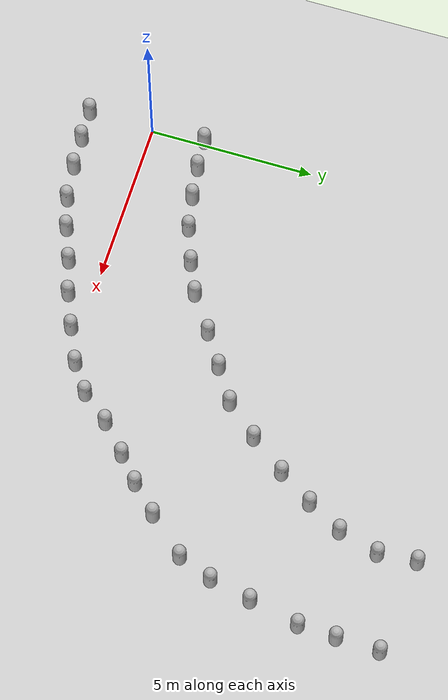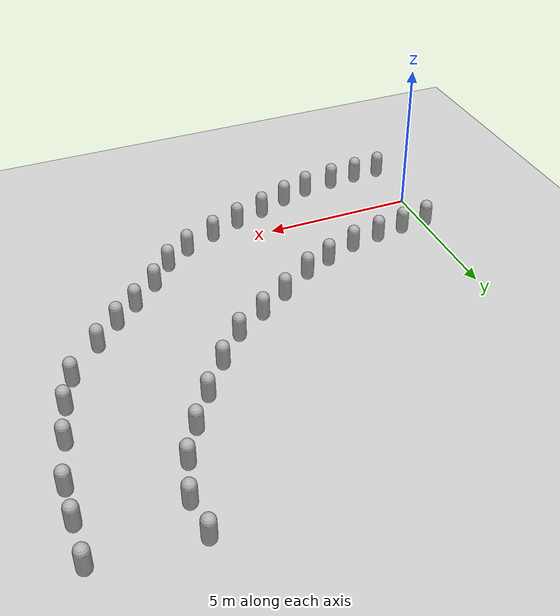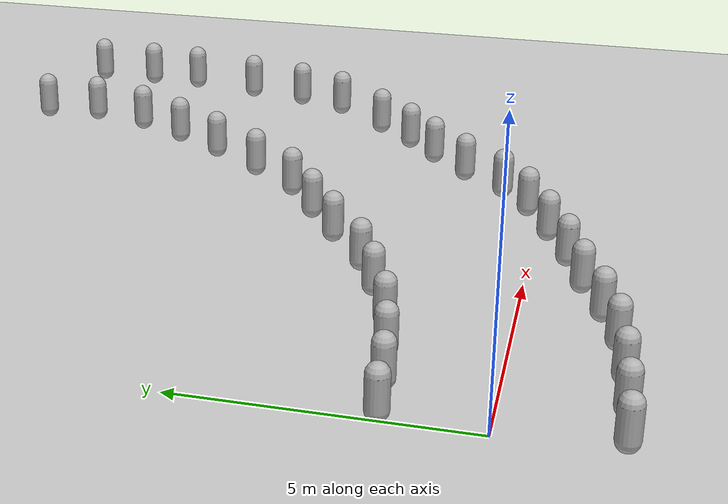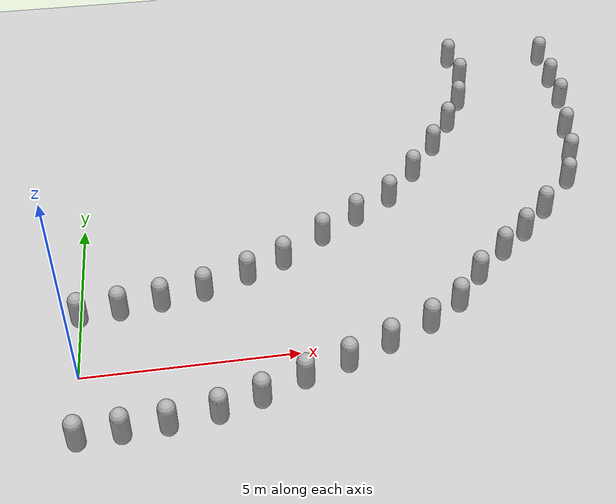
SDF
<sdf version="1.10">
 <world name="empty">
  <model name="ground_plane">
   <static>true</static>
   <link name="link">
    <collision name="collision">
     <geometry><plane><normal>0 0 1</normal><size>100 100</size></plane></geometry>
    </collision>
    <visual name="visual">
     <geometry><plane><normal>0 0 1</normal><size>100 100</size></plane></geometry>
     <material>
      <ambient>0.800000012 0.800000012 0.800000012 1</ambient>
      <diffuse>0.800000012 0.800000012 0.800000012 1</diffuse>
      <specular>0.800000012 0.800000012 0.800000012 1</specular>
     </material>
    </visual>
    <inertial>
     <mass>1</mass>
     <inertia><ixx>1</ixx><ixy>0</ixy><ixz>0</ixz><iyy>1</iyy><iyz>0</iyz><izz>1</izz></inertia>
    </inertial>
   </link>
  </model>
  <model name="capsule">
   <pose>0.0079092960798012868 1.6543923129827109 0.499999999902001 0 0 0</pose>
   <link name="capsule_link">
    <inertial>
     <inertia>
      <ixx>0.074153999999999998</ixx>
      <ixy>0</ixy>
      <ixz>0</ixz>
      <iyy>0.074153999999999998</iyy>
      <iyz>0</iyz>
      <izz>0.018769000000000001</izz>
     </inertia>
     <mass>1</mass>
    </inertial>
    <collision name="capsule_collision">
     <geometry>
      <capsule><radius>0.20000000000000001</radius><length>0.59999999999999998</length></capsule>
     </geometry>
    </collision>
    <visual name="capsule_visual">
     <geometry>
      <capsule><radius>0.20000000000000001</radius><length>0.59999999999999998</length></capsule>
     </geometry>
     <material>
      <ambient>0.300000012 0.300000012 0.300000012 1</ambient>
      <diffuse>0.699999988 0.699999988 0.699999988 1</diffuse>
      <specular>1 1 1 1</specular>
     </material>
    </visual>
   </link>
   <static>false</static>
  </model>
  <model name="capsule_0">
   <pose>0.94512511227716023 1.733680784439902 0.499999999902001 0 0 0</pose>
   <link name="capsule_link">
    <inertial>
     <inertia>
      <ixx>0.074153999999999998</ixx>
      <ixy>0</ixy>
      <ixz>0</ixz>
      <iyy>0.074153999999999998</iyy>
      <iyz>0</iyz>
      <izz>0.018769000000000001</izz>
     </inertia>
     <mass>1</mass>
    </inertial>
    <collision name="capsule_collision">
     <geometry>
      <capsule><radius>0.20000000000000001</radius><length>0.59999999999999998</length></capsule>
     </geometry>
    </collision>
    <visual name="capsule_visual">
     <geometry>
      <capsule><radius>0.20000000000000001</radius><length>0.59999999999999998</length></capsule>
     </geometry>
     <material>
      <ambient>0.300000012 0.300000012 0.300000012 1</ambient>
      <diffuse>0.699999988 0.699999988 0.699999988 1</diffuse>
      <specular>1 1 1 1</specular>
     </material>
    </visual>
   </link>
   <static>false</static>
  </model>
  <model name="capsule_1">
   <pose>1.9187066357914726 1.8748929251924817 0.499999999902001 0 0 0</pose>
   <link name="capsule_link">
    <inertial>
     <inertia>
      <ixx>0.074153999999999998</ixx>
      <ixy>0</ixy>
      <ixz>0</ixz>
      <iyy>0.074153999999999998</iyy>
      <iyz>0</iyz>
      <izz>0.018769000000000001</izz>
     </inertia>
     <mass>1</mass>
    </inertial>
    <collision name="capsule_collision">
     <geometry>
      <capsule><radius>0.20000000000000001</radius><length>0.59999999999999998</length></capsule>
     </geometry>
    </collision>
    <visual name="capsule_visual">
     <geometry>
      <capsule><radius>0.20000000000000001</radius><length>0.59999999999999998</length></capsule>
     </geometry>
     <material>
      <ambient>0.300000012 0.300000012 0.300000012 1</ambient>
      <diffuse>0.699999988 0.699999988 0.699999988 1</diffuse>
      <specular>1 1 1 1</specular>
     </material>
    </visual>
   </link>
   <static>false</static>
  </model>
  <model name="capsule_2">
   <pose>0.071174021114242758 -1.9452252499138223 0.499999999902001 0 0 0</pose>
   <link name="capsule_link">
    <inertial>
     <inertia>
      <ixx>0.074153999999999998</ixx>
      <ixy>0</ixy>
      <ixz>0</ixz>
      <iyy>0.074153999999999998</iyy>
      <iyz>0</iyz>
      <izz>0.018769000000000001</izz>
     </inertia>
     <mass>1</mass>
    </inertial>
    <collision name="capsule_collision">
     <geometry>
      <capsule><radius>0.20000000000000001</radius><length>0.59999999999999998</length></capsule>
     </geometry>
    </collision>
    <visual name="capsule_visual">
     <geometry>
      <capsule><radius>0.20000000000000001</radius><length>0.59999999999999998</length></capsule>
     </geometry>
     <material>
      <ambient>0.300000012 0.300000012 0.300000012 1</ambient>
      <diffuse>0.699999988 0.699999988 0.699999988 1</diffuse>
      <specular>1 1 1 1</specular>
     </material>
    </visual>
   </link>
   <static>false</static>
  </model>
  <model name="capsule_3">
   <pose>1.0079840875515076 -1.8969727998720727 0.499999999902001 0 0 0</pose>
   <link name="capsule_link">
    <inertial>
     <inertia>
      <ixx>0.074153999999999998</ixx>
      <ixy>0</ixy>
      <ixz>0</ixz>
      <iyy>0.074153999999999998</iyy>
      <iyz>0</iyz>
      <izz>0.018769000000000001</izz>
     </inertia>
     <mass>1</mass>
    </inertial>
    <collision name="capsule_collision">
     <geometry>
      <capsule><radius>0.20000000000000001</radius><length>0.59999999999999998</length></capsule>
     </geometry>
    </collision>
    <visual name="capsule_visual">
     <geometry>
      <capsule><radius>0.20000000000000001</radius><length>0.59999999999999998</length></capsule>
     </geometry>
     <material>
      <ambient>0.300000012 0.300000012 0.300000012 1</ambient>
      <diffuse>0.699999988 0.699999988 0.699999988 1</diffuse>
      <specular>1 1 1 1</specular>
     </material>
    </visual>
   </link>
   <static>false</static>
  </model>
  <model name="capsule_4">
   <pose>1.9770966511890031 -1.8243848592570489 0.499999999902001 0 0 0</pose>
   <link name="capsule_link">
    <inertial>
     <inertia>
      <ixx>0.074153999999999998</ixx>
      <ixy>0</ixy>
      <ixz>0</ixz>
      <iyy>0.074153999999999998</iyy>
      <iyz>0</iyz>
      <izz>0.018769000000000001</izz>
     </inertia>
     <mass>1</mass>
    </inertial>
    <collision name="capsule_collision">
     <geometry>
      <capsule><radius>0.20000000000000001</radius><length>0.59999999999999998</length></capsule>
     </geometry>
    </collision>
    <visual name="capsule_visual">
     <geometry>
      <capsule><radius>0.20000000000000001</radius><length>0.59999999999999998</length></capsule>
     </geometry>
     <material>
      <ambient>0.300000012 0.300000012 0.300000012 1</ambient>
      <diffuse>0.699999988 0.699999988 0.699999988 1</diffuse>
      <specular>1 1 1 1</specular>
     </material>
    </visual>
   </link>
   <static>false</static>
  </model>
  <model name="capsule_5">
   <pose>2.9418799014673973 2.0835173150101385 0.499999999902001 0 0 0</pose>
   <link name="capsule_link">
    <inertial>
     <inertia>
      <ixx>0.074153999999999998</ixx>
      <ixy>0</ixy>
      <ixz>0</ixz>
      <iyy>0.074153999999999998</iyy>
      <iyz>0</iyz>
      <izz>0.018769000000000001</izz>
     </inertia>
     <mass>1</mass>
    </inertial>
    <collision name="capsule_collision">
     <geometry>
      <capsule><radius>0.20000000000000001</radius><length>0.59999999999999998</length></capsule>
     </geometry>
    </collision>
    <visual name="capsule_visual">
     <geometry>
      <capsule><radius>0.20000000000000001</radius><length>0.59999999999999998</length></capsule>
     </geometry>
     <material>
      <ambient>0.300000012 0.300000012 0.300000012 1</ambient>
      <diffuse>0.699999988 0.699999988 0.699999988 1</diffuse>
      <specular>1 1 1 1</specular>
     </material>
    </visual>
   </link>
   <static>false</static>
  </model>
  <model name="capsule_6">
   <pose>3.0534784039541742 -1.6741857712264725 0.499999999902001 0 0 0</pose>
   <link name="capsule_link">
    <inertial>
     <inertia>
      <ixx>0.074153999999999998</ixx>
      <ixy>0</ixy>
      <ixz>0</ixz>
      <iyy>0.074153999999999998</iyy>
      <iyz>0</iyz>
      <izz>0.018769000000000001</izz>
     </inertia>
     <mass>1</mass>
    </inertial>
    <collision name="capsule_collision">
     <geometry>
      <capsule><radius>0.20000000000000001</radius><length>0.59999999999999998</length></capsule>
     </geometry>
    </collision>
    <visual name="capsule_visual">
     <geometry>
      <capsule><radius>0.20000000000000001</radius><length>0.59999999999999998</length></capsule>
     </geometry>
     <material>
      <ambient>0.300000012 0.300000012 0.300000012 1</ambient>
      <diffuse>0.699999988 0.699999988 0.699999988 1</diffuse>
      <specular>1 1 1 1</specular>
     </material>
    </visual>
   </link>
   <static>false</static>
  </model>
  <model name="capsule_7">
   <pose>4.0094379070136714 2.4839232532498823 0.499999999902001 0 0 0</pose>
   <link name="capsule_link">
    <inertial>
     <inertia>
      <ixx>0.074153999999999998</ixx>
      <ixy>0</ixy>
      <ixz>0</ixz>
      <iyy>0.074153999999999998</iyy>
      <iyz>0</iyz>
      <izz>0.018769000000000001</izz>
     </inertia>
     <mass>1</mass>
    </inertial>
    <collision name="capsule_collision">
     <geometry>
      <capsule><radius>0.20000000000000001</radius><length>0.59999999999999998</length></capsule>
     </geometry>
    </collision>
    <visual name="capsule_visual">
     <geometry>
      <capsule><radius>0.20000000000000001</radius><length>0.59999999999999998</length></capsule>
     </geometry>
     <material>
      <ambient>0.300000012 0.300000012 0.300000012 1</ambient>
      <diffuse>0.699999988 0.699999988 0.699999988 1</diffuse>
      <specular>1 1 1 1</specular>
     </material>
    </visual>
   </link>
   <static>false</static>
  </model>
  <model name="capsule_8">
   <pose>3.9933107917520312 -1.3831246201174401 0.499999999902001 0 0 0</pose>
   <link name="capsule_link">
    <inertial>
     <inertia>
      <ixx>0.074153999999999998</ixx>
      <ixy>0</ixy>
      <ixz>0</ixz>
      <iyy>0.074153999999999998</iyy>
      <iyz>0</iyz>
      <izz>0.018769000000000001</izz>
     </inertia>
     <mass>1</mass>
    </inertial>
    <collision name="capsule_collision">
     <geometry>
      <capsule><radius>0.20000000000000001</radius><length>0.59999999999999998</length></capsule>
     </geometry>
    </collision>
    <visual name="capsule_visual">
     <geometry>
      <capsule><radius>0.20000000000000001</radius><length>0.59999999999999998</length></capsule>
     </geometry>
     <material>
      <ambient>0.300000012 0.300000012 0.300000012 1</ambient>
      <diffuse>0.699999988 0.699999988 0.699999988 1</diffuse>
      <specular>1 1 1 1</specular>
     </material>
    </visual>
   </link>
   <static>false</static>
  </model>
  <model name="capsule_9">
   <pose>4.9272845839928587 2.8907733621151106 0.499999999902001 0 0 0</pose>
   <link name="capsule_link">
    <inertial>
     <inertia>
      <ixx>0.074153999999999998</ixx>
      <ixy>0</ixy>
      <ixz>0</ixz>
      <iyy>0.074153999999999998</iyy>
      <iyz>0</iyz>
      <izz>0.018769000000000001</izz>
     </inertia>
     <mass>1</mass>
    </inertial>
    <collision name="capsule_collision">
     <geometry>
      <capsule><radius>0.20000000000000001</radius><length>0.59999999999999998</length></capsule>
     </geometry>
    </collision>
    <visual name="capsule_visual">
     <geometry>
      <capsule><radius>0.20000000000000001</radius><length>0.59999999999999998</length></capsule>
     </geometry>
     <material>
      <ambient>0.300000012 0.300000012 0.300000012 1</ambient>
      <diffuse>0.699999988 0.699999988 0.699999988 1</diffuse>
      <specular>1 1 1 1</specular>
     </material>
    </visual>
   </link>
   <static>false</static>
  </model>
  <model name="capsule_10">
   <pose>4.9840762807257226 -0.98658179176943239 0.499999999902001 0 0 0</pose>
   <link name="capsule_link">
    <inertial>
     <inertia>
      <ixx>0.074153999999999998</ixx>
      <ixy>0</ixy>
      <ixz>0</ixz>
      <iyy>0.074153999999999998</iyy>
      <iyz>0</iyz>
      <izz>0.018769000000000001</izz>
     </inertia>
     <mass>1</mass>
    </inertial>
    <collision name="capsule_collision">
     <geometry>
      <capsule><radius>0.20000000000000001</radius><length>0.59999999999999998</length></capsule>
     </geometry>
    </collision>
    <visual name="capsule_visual">
     <geometry>
      <capsule><radius>0.20000000000000001</radius><length>0.59999999999999998</length></capsule>
     </geometry>
     <material>
      <ambient>0.300000012 0.300000012 0.300000012 1</ambient>
      <diffuse>0.699999988 0.699999988 0.699999988 1</diffuse>
      <specular>1 1 1 1</specular>
     </material>
    </visual>
   </link>
   <static>false</static>
  </model>
  <model name="capsule_11">
   <pose>5.9982967455937626 3.6300361546412354 0.499999999902001 0 0 0</pose>
   <link name="capsule_link">
    <inertial>
     <inertia>
      <ixx>0.074153999999999998</ixx>
      <ixy>0</ixy>
      <ixz>0</ixz>
      <iyy>0.074153999999999998</iyy>
      <iyz>0</iyz>
      <izz>0.018769000000000001</izz>
     </inertia>
     <mass>1</mass>
    </inertial>
    <collision name="capsule_collision">
     <geometry>
      <capsule><radius>0.20000000000000001</radius><length>0.59999999999999998</length></capsule>
     </geometry>
    </collision>
    <visual name="capsule_visual">
     <geometry>
      <capsule><radius>0.20000000000000001</radius><length>0.59999999999999998</length></capsule>
     </geometry>
     <material>
      <ambient>0.300000012 0.300000012 0.300000012 1</ambient>
      <diffuse>0.699999988 0.699999988 0.699999988 1</diffuse>
      <specular>1 1 1 1</specular>
     </material>
    </visual>
   </link>
   <static>false</static>
  </model>
  <model name="capsule_12">
   <pose>5.9997241077704127 -0.66053042265015316 0.499999999902001 0 0 0</pose>
   <link name="capsule_link">
    <inertial>
     <inertia>
      <ixx>0.074153999999999998</ixx>
      <ixy>0</ixy>
      <ixz>0</ixz>
      <iyy>0.074153999999999998</iyy>
      <iyz>0</iyz>
      <izz>0.018769000000000001</izz>
     </inertia>
     <mass>1</mass>
    </inertial>
    <collision name="capsule_collision">
     <geometry>
      <capsule><radius>0.20000000000000001</radius><length>0.59999999999999998</length></capsule>
     </geometry>
    </collision>
    <visual name="capsule_visual">
     <geometry>
      <capsule><radius>0.20000000000000001</radius><length>0.59999999999999998</length></capsule>
     </geometry>
     <material>
      <ambient>0.300000012 0.300000012 0.300000012 1</ambient>
      <diffuse>0.699999988 0.699999988 0.699999988 1</diffuse>
      <specular>1 1 1 1</specular>
     </material>
    </visual>
   </link>
   <static>false</static>
  </model>
  <model name="capsule_13">
   <pose>6.9596569506124863 4.2527939600757358 0.499999999902001 0 0 0</pose>
   <link name="capsule_link">
    <inertial>
     <inertia>
      <ixx>0.074153999999999998</ixx>
      <ixy>0</ixy>
      <ixz>0</ixz>
      <iyy>0.074153999999999998</iyy>
      <iyz>0</iyz>
      <izz>0.018769000000000001</izz>
     </inertia>
     <mass>1</mass>
    </inertial>
    <collision name="capsule_collision">
     <geometry>
      <capsule><radius>0.20000000000000001</radius><length>0.59999999999999998</length></capsule>
     </geometry>
    </collision>
    <visual name="capsule_visual">
     <geometry>
      <capsule><radius>0.20000000000000001</radius><length>0.59999999999999998</length></capsule>
     </geometry>
     <material>
      <ambient>0.300000012 0.300000012 0.300000012 1</ambient>
      <diffuse>0.699999988 0.699999988 0.699999988 1</diffuse>
      <specular>1 1 1 1</specular>
     </material>
    </visual>
   </link>
   <static>false</static>
  </model>
  <model name="capsule_14">
   <pose>7.0108881171063908 -0.23596897892512203 0.499999999902001 0 0 0</pose>
   <link name="capsule_link">
    <inertial>
     <inertia>
      <ixx>0.074153999999999998</ixx>
      <ixy>0</ixy>
      <ixz>0</ixz>
      <iyy>0.074153999999999998</iyy>
      <iyz>0</iyz>
      <izz>0.018769000000000001</izz>
     </inertia>
     <mass>1</mass>
    </inertial>
    <collision name="capsule_collision">
     <geometry>
      <capsule><radius>0.20000000000000001</radius><length>0.59999999999999998</length></capsule>
     </geometry>
    </collision>
    <visual name="capsule_visual">
     <geometry>
      <capsule><radius>0.20000000000000001</radius><length>0.59999999999999998</length></capsule>
     </geometry>
     <material>
      <ambient>0.300000012 0.300000012 0.300000012 1</ambient>
      <diffuse>0.699999988 0.699999988 0.699999988 1</diffuse>
      <specular>1 1 1 1</specular>
     </material>
    </visual>
   </link>
   <static>false</static>
  </model>
  <model name="capsule_15">
   <pose>7.9441173175420836 4.8912118331948875 0.499999999902001 0 0 0</pose>
   <link name="capsule_link">
    <inertial>
     <inertia>
      <ixx>0.074153999999999998</ixx>
      <ixy>0</ixy>
      <ixz>0</ixz>
      <iyy>0.074153999999999998</iyy>
      <iyz>0</iyz>
      <izz>0.018769000000000001</izz>
     </inertia>
     <mass>1</mass>
    </inertial>
    <collision name="capsule_collision">
     <geometry>
      <capsule><radius>0.20000000000000001</radius><length>0.59999999999999998</length></capsule>
     </geometry>
    </collision>
    <visual name="capsule_visual">
     <geometry>
      <capsule><radius>0.20000000000000001</radius><length>0.59999999999999998</length></capsule>
     </geometry>
     <material>
      <ambient>0.300000012 0.300000012 0.300000012 1</ambient>
      <diffuse>0.699999988 0.699999988 0.699999988 1</diffuse>
      <specular>1 1 1 1</specular>
     </material>
    </visual>
   </link>
   <static>false</static>
  </model>
  <model name="capsule_16">
   <pose>8.0572184014874164 0.23701005670510478 0.499999999902001 0 0 0</pose>
   <link name="capsule_link">
    <inertial>
     <inertia>
      <ixx>0.074153999999999998</ixx>
      <ixy>0</ixy>
      <ixz>0</ixz>
      <iyy>0.074153999999999998</iyy>
      <iyz>0</iyz>
      <izz>0.018769000000000001</izz>
     </inertia>
     <mass>1</mass>
    </inertial>
    <collision name="capsule_collision">
     <geometry>
      <capsule><radius>0.20000000000000001</radius><length>0.59999999999999998</length></capsule>
     </geometry>
    </collision>
    <visual name="capsule_visual">
     <geometry>
      <capsule><radius>0.20000000000000001</radius><length>0.59999999999999998</length></capsule>
     </geometry>
     <material>
      <ambient>0.300000012 0.300000012 0.300000012 1</ambient>
      <diffuse>0.699999988 0.699999988 0.699999988 1</diffuse>
      <specular>1 1 1 1</specular>
     </material>
    </visual>
   </link>
   <static>false</static>
  </model>
  <model name="capsule_17">
   <pose>8.784491633246251 5.8662201830098777 0.499999999902001 0 0 0</pose>
   <link name="capsule_link">
    <inertial>
     <inertia>
      <ixx>0.074153999999999998</ixx>
      <ixy>0</ixy>
      <ixz>0</ixz>
      <iyy>0.074153999999999998</iyy>
      <iyz>0</iyz>
      <izz>0.018769000000000001</izz>
     </inertia>
     <mass>1</mass>
    </inertial>
    <collision name="capsule_collision">
     <geometry>
      <capsule><radius>0.20000000000000001</radius><length>0.59999999999999998</length></capsule>
     </geometry>
    </collision>
    <visual name="capsule_visual">
     <geometry>
      <capsule><radius>0.20000000000000001</radius><length>0.59999999999999998</length></capsule>
     </geometry>
     <material>
      <ambient>0.300000012 0.300000012 0.300000012 1</ambient>
      <diffuse>0.699999988 0.699999988 0.699999988 1</diffuse>
      <specular>1 1 1 1</specular>
     </material>
    </visual>
   </link>
   <static>false</static>
  </model>
  <model name="capsule_18">
   <pose>8.8740413969647456 0.80734262371132193 0.499999999902001 0 0 0</pose>
   <link name="capsule_link">
    <inertial>
     <inertia>
      <ixx>0.074153999999999998</ixx>
      <ixy>0</ixy>
      <ixz>0</ixz>
      <iyy>0.074153999999999998</iyy>
      <iyz>0</iyz>
      <izz>0.018769000000000001</izz>
     </inertia>
     <mass>1</mass>
    </inertial>
    <collision name="capsule_collision">
     <geometry>
      <capsule><radius>0.20000000000000001</radius><length>0.59999999999999998</length></capsule>
     </geometry>
    </collision>
    <visual name="capsule_visual">
     <geometry>
      <capsule><radius>0.20000000000000001</radius><length>0.59999999999999998</length></capsule>
     </geometry>
     <material>
      <ambient>0.300000012 0.300000012 0.300000012 1</ambient>
      <diffuse>0.699999988 0.699999988 0.699999988 1</diffuse>
      <specular>1 1 1 1</specular>
     </material>
    </visual>
   </link>
   <static>false</static>
  </model>
  <model name="capsule_19">
   <pose>9.565480298544724 1.6502451150646742 0.499999999902001 0 0 0</pose>
   <link name="capsule_link">
    <inertial>
     <inertia>
      <ixx>0.074153999999999998</ixx>
      <ixy>0</ixy>
      <ixz>0</ixz>
      <iyy>0.074153999999999998</iyy>
      <iyz>0</iyz>
      <izz>0.018769000000000001</izz>
     </inertia>
     <mass>1</mass>
    </inertial>
    <collision name="capsule_collision">
     <geometry>
      <capsule><radius>0.20000000000000001</radius><length>0.59999999999999998</length></capsule>
     </geometry>
    </collision>
    <visual name="capsule_visual">
     <geometry>
      <capsule><radius>0.20000000000000001</radius><length>0.59999999999999998</length></capsule>
     </geometry>
     <material>
      <ambient>0.300000012 0.300000012 0.300000012 1</ambient>
      <diffuse>0.699999988 0.699999988 0.699999988 1</diffuse>
      <specular>1 1 1 1</specular>
     </material>
    </visual>
   </link>
   <static>false</static>
  </model>
  <model name="capsule_20">
   <pose>9.5760287630693099 6.9376943894907726 0.499999999902001 0 0 0</pose>
   <link name="capsule_link">
    <inertial>
     <inertia>
      <ixx>0.074153999999999998</ixx>
      <ixy>0</ixy>
      <ixz>0</ixz>
      <iyy>0.074153999999999998</iyy>
      <iyz>0</iyz>
      <izz>0.018769000000000001</izz>
     </inertia>
     <mass>1</mass>
    </inertial>
    <collision name="capsule_collision">
     <geometry>
      <capsule><radius>0.20000000000000001</radius><length>0.59999999999999998</length></capsule>
     </geometry>
    </collision>
    <visual name="capsule_visual">
     <geometry>
      <capsule><radius>0.20000000000000001</radius><length>0.59999999999999998</length></capsule>
     </geometry>
     <material>
      <ambient>0.300000012 0.300000012 0.300000012 1</ambient>
      <diffuse>0.699999988 0.699999988 0.699999988 1</diffuse>
      <specular>1 1 1 1</specular>
     </material>
    </visual>
   </link>
   <static>false</static>
  </model>
  <model name="capsule_21">
   <pose>10.381177677795568 2.4105502564392642 0.499999999902001 0 0 0</pose>
   <link name="capsule_link">
    <inertial>
     <inertia>
      <ixx>0.074153999999999998</ixx>
      <ixy>0</ixy>
      <ixz>0</ixz>
      <iyy>0.074153999999999998</iyy>
      <iyz>0</iyz>
      <izz>0.018769000000000001</izz>
     </inertia>
     <mass>1</mass>
    </inertial>
    <collision name="capsule_collision">
     <geometry>
      <capsule><radius>0.20000000000000001</radius><length>0.59999999999999998</length></capsule>
     </geometry>
    </collision>
    <visual name="capsule_visual">
     <geometry>
      <capsule><radius>0.20000000000000001</radius><length>0.59999999999999998</length></capsule>
     </geometry>
     <material>
      <ambient>0.300000012 0.300000012 0.300000012 1</ambient>
      <diffuse>0.699999988 0.699999988 0.699999988 1</diffuse>
      <specular>1 1 1 1</specular>
     </material>
    </visual>
   </link>
   <static>false</static>
  </model>
  <model name="capsule_22">
   <pose>11.104713062926447 3.0382462982686742 0.499999999902001 0 0 0</pose>
   <link name="capsule_link">
    <inertial>
     <inertia>
      <ixx>0.074153999999999998</ixx>
      <ixy>0</ixy>
      <ixz>0</ixz>
      <iyy>0.074153999999999998</iyy>
      <iyz>0</iyz>
      <izz>0.018769000000000001</izz>
     </inertia>
     <mass>1</mass>
    </inertial>
    <collision name="capsule_collision">
     <geometry>
      <capsule><radius>0.20000000000000001</radius><length>0.59999999999999998</length></capsule>
     </geometry>
    </collision>
    <visual name="capsule_visual">
     <geometry>
      <capsule><radius>0.20000000000000001</radius><length>0.59999999999999998</length></capsule>
     </geometry>
     <material>
      <ambient>0.300000012 0.300000012 0.300000012 1</ambient>
      <diffuse>0.699999988 0.699999988 0.699999988 1</diffuse>
      <specular>1 1 1 1</specular>
     </material>
    </visual>
   </link>
   <static>false</static>
  </model>
  <model name="capsule_23">
   <pose>11.863521378822202 3.8158140797079758 0.499999999902001 0 0 0</pose>
   <link name="capsule_link">
    <inertial>
     <inertia>
      <ixx>0.074153999999999998</ixx>
      <ixy>0</ixy>
      <ixz>0</ixz>
      <iyy>0.074153999999999998</iyy>
      <iyz>0</iyz>
      <izz>0.018769000000000001</izz>
     </inertia>
     <mass>1</mass>
    </inertial>
    <collision name="capsule_collision">
     <geometry>
      <capsule><radius>0.20000000000000001</radius><length>0.59999999999999998</length></capsule>
     </geometry>
    </collision>
    <visual name="capsule_visual">
     <geometry>
      <capsule><radius>0.20000000000000001</radius><length>0.59999999999999998</length></capsule>
     </geometry>
     <material>
      <ambient>0.300000012 0.300000012 0.300000012 1</ambient>
      <diffuse>0.699999988 0.699999988 0.699999988 1</diffuse>
      <specular>1 1 1 1</specular>
     </material>
    </visual>
   </link>
   <static>false</static>
  </model>
  <model name="capsule_24">
   <pose>12.842624452844444 4.9232899690504173 0.499999999902001 0 0 0</pose>
   <link name="capsule_link">
    <inertial>
     <inertia>
      <ixx>0.074153999999999998</ixx>
      <ixy>0</ixy>
      <ixz>0</ixz>
      <iyy>0.074153999999999998</iyy>
      <iyz>0</iyz>
      <izz>0.018769000000000001</izz>
     </inertia>
     <mass>1</mass>
    </inertial>
    <collision name="capsule_collision">
     <geometry>
      <capsule><radius>0.20000000000000001</radius><length>0.59999999999999998</length></capsule>
     </geometry>
    </collision>
    <visual name="capsule_visual">
     <geometry>
      <capsule><radius>0.20000000000000001</radius><length>0.59999999999999998</length></capsule>
     </geometry>
     <material>
      <ambient>0.300000012 0.300000012 0.300000012 1</ambient>
      <diffuse>0.699999988 0.699999988 0.699999988 1</diffuse>
      <specular>1 1 1 1</specular>
     </material>
    </visual>
   </link>
   <static>false</static>
  </model>
  <model name="capsule_25">
   <pose>10.241065206843952 7.968432308927837 0.499999999902001 0 0 0</pose>
   <link name="capsule_link">
    <inertial>
     <inertia>
      <ixx>0.074153999999999998</ixx>
      <ixy>0</ixy>
      <ixz>0</ixz>
      <iyy>0.074153999999999998</iyy>
      <iyz>0</iyz>
      <izz>0.018769000000000001</izz>
     </inertia>
     <mass>1</mass>
    </inertial>
    <collision name="capsule_collision">
     <geometry>
      <capsule><radius>0.20000000000000001</radius><length>0.59999999999999998</length></capsule>
     </geometry>
    </collision>
    <visual name="capsule_visual">
     <geometry>
      <capsule><radius>0.20000000000000001</radius><length>0.59999999999999998</length></capsule>
     </geometry>
     <material>
      <ambient>0.300000012 0.300000012 0.300000012 1</ambient>
      <diffuse>0.699999988 0.699999988 0.699999988 1</diffuse>
      <specular>1 1 1 1</specular>
     </material>
    </visual>
   </link>
   <static>false</static>
  </model>
  <model name="capsule_26">
   <pose>10.799237430340604 9.0142262635759707 0.499999999902001 0 0 0</pose>
   <link name="capsule_link">
    <inertial>
     <inertia>
      <ixx>0.074153999999999998</ixx>
      <ixy>0</ixy>
      <ixz>0</ixz>
      <iyy>0.074153999999999998</iyy>
      <iyz>0</iyz>
      <izz>0.018769000000000001</izz>
     </inertia>
     <mass>1</mass>
    </inertial>
    <collision name="capsule_collision">
     <geometry>
      <capsule><radius>0.20000000000000001</radius><length>0.59999999999999998</length></capsule>
     </geometry>
    </collision>
    <visual name="capsule_visual">
     <geometry>
      <capsule><radius>0.20000000000000001</radius><length>0.59999999999999998</length></capsule>
     </geometry>
     <material>
      <ambient>0.300000012 0.300000012 0.300000012 1</ambient>
      <diffuse>0.699999988 0.699999988 0.699999988 1</diffuse>
      <specular>1 1 1 1</specular>
     </material>
    </visual>
   </link>
   <static>false</static>
  </model>
  <model name="capsule_27">
   <pose>11.13269029766785 10.218042116566297 0.499999999902001 0 0 0</pose>
   <link name="capsule_link">
    <inertial>
     <inertia>
      <ixx>0.074153999999999998</ixx>
      <ixy>0</ixy>
      <ixz>0</ixz>
      <iyy>0.074153999999999998</iyy>
      <iyz>0</iyz>
      <izz>0.018769000000000001</izz>
     </inertia>
     <mass>1</mass>
    </inertial>
    <collision name="capsule_collision">
     <geometry>
      <capsule><radius>0.20000000000000001</radius><length>0.59999999999999998</length></capsule>
     </geometry>
    </collision>
    <visual name="capsule_visual">
     <geometry>
      <capsule><radius>0.20000000000000001</radius><length>0.59999999999999998</length></capsule>
     </geometry>
     <material>
      <ambient>0.300000012 0.300000012 0.300000012 1</ambient>
      <diffuse>0.699999988 0.699999988 0.699999988 1</diffuse>
      <specular>1 1 1 1</specular>
     </material>
    </visual>
   </link>
   <static>false</static>
  </model>
  <model name="capsule_28">
   <pose>11.038774745202616 11.366551516895031 0.499999999902001 0 0 0</pose>
   <link name="capsule_link">
    <inertial>
     <inertia>
      <ixx>0.074153999999999998</ixx>
      <ixy>0</ixy>
      <ixz>0</ixz>
      <iyy>0.074153999999999998</iyy>
      <iyz>0</iyz>
      <izz>0.018769000000000001</izz>
     </inertia>
     <mass>1</mass>
    </inertial>
    <collision name="capsule_collision">
     <geometry>
      <capsule><radius>0.20000000000000001</radius><length>0.59999999999999998</length></capsule>
     </geometry>
    </collision>
    <visual name="capsule_visual">
     <geometry>
      <capsule><radius>0.20000000000000001</radius><length>0.59999999999999998</length></capsule>
     </geometry>
     <material>
      <ambient>0.300000012 0.300000012 0.300000012 1</ambient>
      <diffuse>0.699999988 0.699999988 0.699999988 1</diffuse>
      <specular>1 1 1 1</specular>
     </material>
    </visual>
   </link>
   <static>false</static>
  </model>
  <model name="capsule_32">
   <pose>13.239476778534637 5.951942865505119 0.499999999902001 0 0 0</pose>
   <link name="capsule_link">
    <inertial>
     <inertia>
      <ixx>0.074153999999999998</ixx>
      <ixy>0</ixy>
      <ixz>0</ixz>
      <iyy>0.074153999999999998</iyy>
      <iyz>0</iyz>
      <izz>0.018769000000000001</izz>
     </inertia>
     <mass>1</mass>
    </inertial>
    <collision name="capsule_collision">
     <geometry>
      <capsule><radius>0.20000000000000001</radius><length>0.59999999999999998</length></capsule>
     </geometry>
    </collision>
    <visual name="capsule_visual">
     <geometry>
      <capsule><radius>0.20000000000000001</radius><length>0.59999999999999998</length></capsule>
     </geometry>
     <material>
      <ambient>0.300000012 0.300000012 0.300000012 1</ambient>
      <diffuse>0.699999988 0.699999988 0.699999988 1</diffuse>
      <specular>1 1 1 1</specular>
     </material>
    </visual>
   </link>
   <static>false</static>
  </model>
  <model name="capsule_33">
   <pose>13.50481101079912 7.1933829478868461 0.499999999902001 0 0 0</pose>
   <link name="capsule_link">
    <inertial>
     <inertia>
      <ixx>0.074153999999999998</ixx>
      <ixy>0</ixy>
      <ixz>0</ixz>
      <iyy>0.074153999999999998</iyy>
      <iyz>0</iyz>
      <izz>0.018769000000000001</izz>
     </inertia>
     <mass>1</mass>
    </inertial>
    <collision name="capsule_collision">
     <geometry>
      <capsule><radius>0.20000000000000001</radius><length>0.59999999999999998</length></capsule>
     </geometry>
    </collision>
    <visual name="capsule_visual">
     <geometry>
      <capsule><radius>0.20000000000000001</radius><length>0.59999999999999998</length></capsule>
     </geometry>
     <material>
      <ambient>0.300000012 0.300000012 0.300000012 1</ambient>
      <diffuse>0.699999988 0.699999988 0.699999988 1</diffuse>
      <specular>1 1 1 1</specular>
     </material>
    </visual>
   </link>
   <static>false</static>
  </model>
  <model name="capsule_34">
   <pose>13.810151428145124 8.6756125647876896 0.499999999902001 0 0 0</pose>
   <link name="capsule_link">
    <inertial>
     <inertia>
      <ixx>0.074153999999999998</ixx>
      <ixy>0</ixy>
      <ixz>0</ixz>
      <iyy>0.074153999999999998</iyy>
      <iyz>0</iyz>
      <izz>0.018769000000000001</izz>
     </inertia>
     <mass>1</mass>
    </inertial>
    <collision name="capsule_collision">
     <geometry>
      <capsule><radius>0.20000000000000001</radius><length>0.59999999999999998</length></capsule>
     </geometry>
    </collision>
    <visual name="capsule_visual">
     <geometry>
      <capsule><radius>0.20000000000000001</radius><length>0.59999999999999998</length></capsule>
     </geometry>
     <material>
      <ambient>0.300000012 0.300000012 0.300000012 1</ambient>
      <diffuse>0.699999988 0.699999988 0.699999988 1</diffuse>
      <specular>1 1 1 1</specular>
     </material>
    </visual>
   </link>
   <static>false</static>
  </model>
  <model name="capsule_35">
   <pose>13.851305452972403 9.7995908558641851 0.499999999902001 0 0 0</pose>
   <link name="capsule_link">
    <inertial>
     <inertia>
      <ixx>0.074153999999999998</ixx>
      <ixy>0</ixy>
      <ixz>0</ixz>
      <iyy>0.074153999999999998</iyy>
      <iyz>0</iyz>
      <izz>0.018769000000000001</izz>
     </inertia>
     <mass>1</mass>
    </inertial>
    <collision name="capsule_collision">
     <geometry>
      <capsule><radius>0.20000000000000001</radius><length>0.59999999999999998</length></capsule>
     </geometry>
    </collision>
    <visual name="capsule_visual">
     <geometry>
      <capsule><radius>0.20000000000000001</radius><length>0.59999999999999998</length></capsule>
     </geometry>
     <material>
      <ambient>0.300000012 0.300000012 0.300000012 1</ambient>
      <diffuse>0.699999988 0.699999988 0.699999988 1</diffuse>
      <specular>1 1 1 1</specular>
     </material>
    </visual>
   </link>
   <static>false</static>
  </model>
  <model name="capsule_36">
   <pose>13.878959177232108 11.076699639115555 0.499999999902001 0 0 0</pose>
   <link name="capsule_link">
    <inertial>
     <inertia>
      <ixx>0.074153999999999998</ixx>
      <ixy>0</ixy>
      <ixz>0</ixz>
      <iyy>0.074153999999999998</iyy>
      <iyz>0</iyz>
      <izz>0.018769000000000001</izz>
     </inertia>
     <mass>1</mass>
    </inertial>
    <collision name="capsule_collision">
     <geometry>
      <capsule><radius>0.20000000000000001</radius><length>0.59999999999999998</length></capsule>
     </geometry>
    </collision>
    <visual name="capsule_visual">
     <geometry>
      <capsule><radius>0.20000000000000001</radius><length>0.59999999999999998</length></capsule>
     </geometry>
     <material>
      <ambient>0.300000012 0.300000012 0.300000012 1</ambient>
      <diffuse>0.699999988 0.699999988 0.699999988 1</diffuse>
      <specular>1 1 1 1</specular>
     </material>
    </visual>
   </link>
   <static>false</static>
  </model>
 </world>
</sdf>
